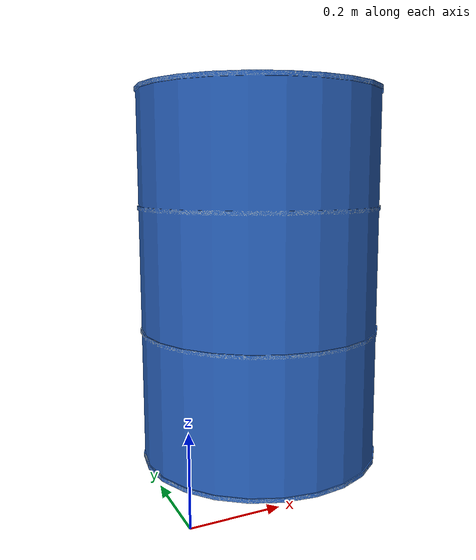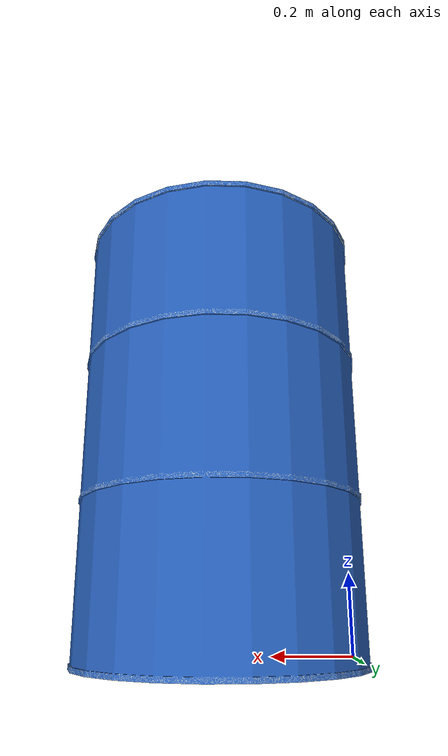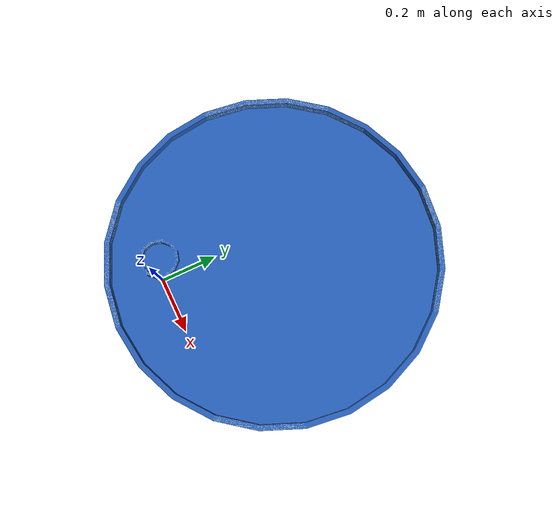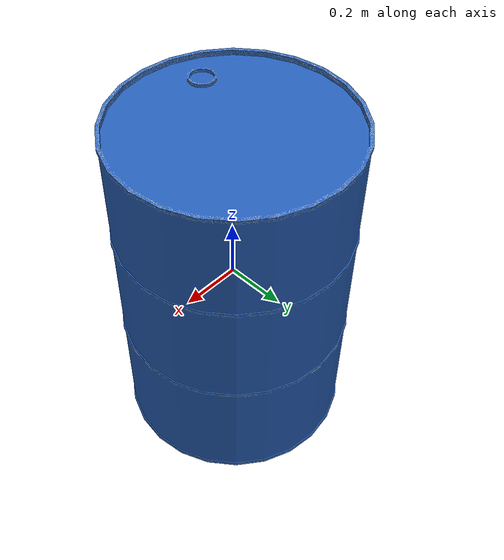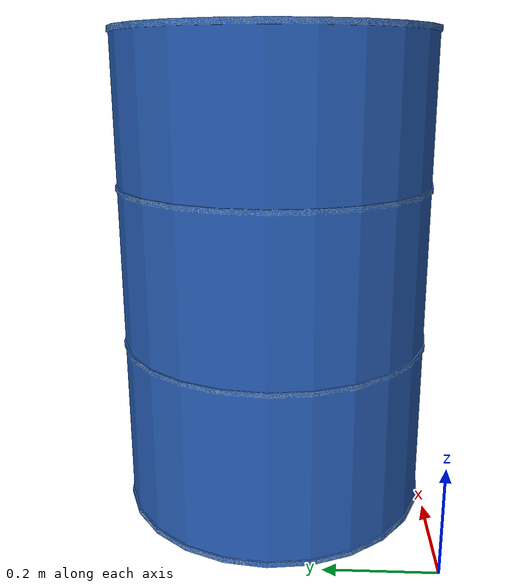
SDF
<?xml version="1.0" ?>
<sdf version="1.6">
  <model name="barrel">
    <static>true</static>
    <link name="link">
      <collision name="collision">
        <geometry>
          <mesh>
            <scale>1 1 1</scale>
            <uri>model://barrel/meshes/barrel.dae</uri>
          </mesh>
        </geometry>
      </collision>
      <visual name="visual">
        <geometry>
          <mesh>
            <scale>1 1 1</scale>
            <uri>model://barrel/meshes/barrel.dae</uri>
          </mesh>
        </geometry>
      </visual>
    </link>
  </model>
</sdf>
